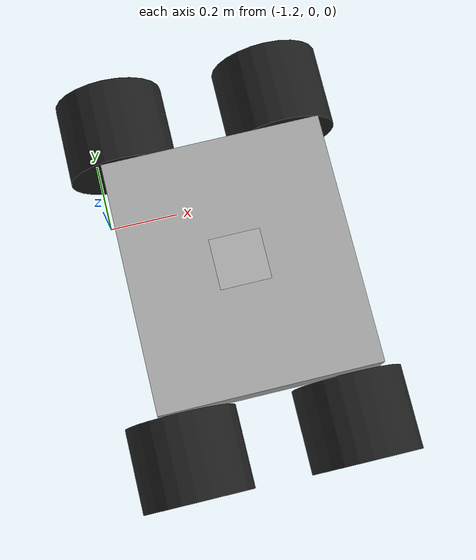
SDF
<?xml version='1.0'?>
<sdf version='1.7'>
  <model name='my_vehicle_2'>
    <link name='platform'>
      <inertial>
        <mass>0.453592</mass>
        <inertia>
          <ixx>0.022113</ixx>
          <ixy>0</ixy>
          <ixz>0</ixz>
          <iyy>0.016999</iyy>
          <iyz>0</iyz>
          <izz>0.0377454</izz>
        </inertia>
        <pose>0 0 0 0 -0 0</pose>
      </inertial>
      <pose>-0.855453 -0.204089 0.029318 0 -0 0</pose>
      <gravity>1</gravity>
      <self_collide>0</self_collide>
      <kinematic>0</kinematic>
      <enable_wind>0</enable_wind>

        <visual name="qrcode1">
          <pose>0 0 0.10 0 0 0</pose>
          <cast_shadows>false</cast_shadows>
          <geometry>
            <plane>
              <normal>0 0 1</normal>
              <size>0.15 0.15</size>
            </plane>
          </geometry>

          <material>
            <script>
              <uri>file://media/materials/scripts/gazebo2.material</uri>
              <name>Gazebo/Aruco72</name>
            </script>
          </material>

        </visual>

      <visual name='visual'>
        <pose>0 0 0 0 -0 0</pose>
        <geometry>
          <box>
            <size>0.656993 0.75295 0.134448</size>
          </box>
        </geometry>
        <material>
          <lighting>1</lighting>
          <script>
            <uri>file://media/materials/scripts/gazebo.material</uri>
            <name>Gazebo/Metal</name>
          </script>
          <shader type='pixel'>
            <normal_map>__default__</normal_map>
          </shader>
          <ambient>0.3 0.3 0.3 1</ambient>
          <diffuse>0.7 0.7 0.7 1</diffuse>
          <specular>0.01 0.01 0.01 1</specular>
          <emissive>0 0 0 1</emissive>
        </material>
        <transparency>0</transparency>
        <cast_shadows>1</cast_shadows>
      </visual>
      <collision name='collision'>
        <laser_retro>0</laser_retro>
        <max_contacts>10</max_contacts>
        <pose>0 0 0 0 -0 0</pose>
        <geometry>
          <box>
            <size>0.656993 0.75295 0.134448</size>
          </box>
        </geometry>
        <surface>
          <friction>
            <ode>
              <mu>1000</mu>
		<mu2>1000</mu2>
              <fdir1>0 0 0</fdir1>
              <slip1>0</slip1>
              <slip2>0</slip2>
            </ode>
            <torsional>
              <coefficient>1</coefficient>
              <patch_radius>0</patch_radius>
              <surface_radius>0</surface_radius>
              <use_patch_radius>1</use_patch_radius>
              <ode>
                <slip>0</slip>
              </ode>
            </torsional>
          </friction>
          <bounce>
            <restitution_coefficient>0</restitution_coefficient>
            <threshold>1e+06</threshold>
          </bounce>
          <contact>
            <collide_without_contact>0</collide_without_contact>
            <collide_without_contact_bitmask>1</collide_without_contact_bitmask>
            <collide_bitmask>1</collide_bitmask>
            <ode>
              <soft_cfm>0</soft_cfm>
              <soft_erp>0.2</soft_erp>
              <kp>1e+13</kp>
              <kd>1</kd>
              <max_vel>0.01</max_vel>
              <min_depth>0</min_depth>
            </ode>
            <bullet>
              <split_impulse>1</split_impulse>
              <split_impulse_penetration_threshold>-0.01</split_impulse_penetration_threshold>
              <soft_cfm>0</soft_cfm>
              <soft_erp>0.2</soft_erp>
              <kp>1e+13</kp>
              <kd>1</kd>
            </bullet>
          </contact>
        </surface>
      </collision>
    </link>
    <link name='wheel_0'>
      <inertial>
        <mass>1.2</mass>
        <inertia>
          <ixx>0.0145863</ixx>
          <ixy>0</ixy>
          <ixz>0</ixz>
          <iyy>0.0145863</iyy>
          <iyz>0</iyz>
          <izz>0.0166725</izz>
        </inertia>
        <pose>0 0 0 0 -0 0</pose>
      </inertial>
      <pose>-1.12754 -0.709402 -0.070627 1.57065 3e-05 -0.000928</pose>
      <gravity>1</gravity>
      <self_collide>0</self_collide>
      <kinematic>0</kinematic>
      <enable_wind>0</enable_wind>
      <visual name='visual'>
        <pose>0 0 0 0 -0 0</pose>
        <geometry>
          <cylinder>
            <radius>0.166696</radius>
            <length>0.25</length>
          </cylinder>
        </geometry>
        <material>
          <lighting>1</lighting>
          <script>
            <uri>file://media/materials/scripts/gazebo.material</uri>
            <name>Gazebo/Black</name>
          </script>
          <shader type='pixel'>
            <normal_map>__default__</normal_map>
          </shader>
          <ambient>0.3 0.3 0.3 1</ambient>
          <diffuse>0.7 0.7 0.7 1</diffuse>
          <specular>0.01 0.01 0.01 1</specular>
          <emissive>0 0 0 1</emissive>
        </material>
        <transparency>0</transparency>
        <cast_shadows>1</cast_shadows>
      </visual>
      <collision name='collision'>
        <laser_retro>0</laser_retro>
        <max_contacts>10</max_contacts>
        <pose>0 0 0 0 -0 0</pose>
        <geometry>
          <cylinder>
            <radius>0.166696</radius>
            <length>0.25</length>
          </cylinder>
        </geometry>
        <surface>
          <friction>
            <ode>
              <mu>1</mu>
              <mu2>1</mu2>
              <fdir1>0 0 0</fdir1>
              <slip1>0</slip1>
              <slip2>0</slip2>
            </ode>
            <torsional>
              <coefficient>1</coefficient>
              <patch_radius>0</patch_radius>
              <surface_radius>0</surface_radius>
              <use_patch_radius>1</use_patch_radius>
              <ode>
                <slip>0</slip>
              </ode>
            </torsional>
          </friction>
          <bounce>
            <restitution_coefficient>0</restitution_coefficient>
            <threshold>1e+06</threshold>
          </bounce>
          <contact>
            <collide_without_contact>0</collide_without_contact>
            <collide_without_contact_bitmask>1</collide_without_contact_bitmask>
            <collide_bitmask>1</collide_bitmask>
            <ode>
              <soft_cfm>0</soft_cfm>
              <soft_erp>0.2</soft_erp>
              <kp>1e+13</kp>
              <kd>1</kd>
              <max_vel>0.01</max_vel>
              <min_depth>0</min_depth>
            </ode>
            <bullet>
              <split_impulse>1</split_impulse>
              <split_impulse_penetration_threshold>-0.01</split_impulse_penetration_threshold>
              <soft_cfm>0</soft_cfm>
              <soft_erp>0.2</soft_erp>
              <kp>1e+13</kp>
              <kd>1</kd>
            </bullet>
          </contact>
        </surface>
      </collision>
    </link>
    <link name='wheel_1'>
      <inertial>
        <mass>1.5</mass>
        <inertia>
          <ixx>0.0182328</ixx>
          <ixy>0</ixy>
          <ixz>0</ixz>
          <iyy>0.0182328</iyy>
          <iyz>0</iyz>
          <izz>0.0208407</izz>
        </inertia>
        <pose>0 0 0 0 -0 0</pose>
      </inertial>
      <pose>-0.624772 -0.713235 -0.070573 1.57061 6e-05 -0.001856</pose>
      <gravity>1</gravity>
      <self_collide>0</self_collide>
      <kinematic>0</kinematic>
      <enable_wind>0</enable_wind>
      <visual name='visual'>
        <pose>0 0 0 0 -0 0</pose>
        <geometry>
          <cylinder>
            <radius>0.166696</radius>
            <length>0.25</length>
          </cylinder>
        </geometry>
        <material>
          <lighting>1</lighting>
          <script>
            <uri>file://media/materials/scripts/gazebo.material</uri>
            <name>Gazebo/Black</name>
          </script>
          <shader type='pixel'>
            <normal_map>__default__</normal_map>
          </shader>
          <ambient>0.3 0.3 0.3 1</ambient>
          <diffuse>0.7 0.7 0.7 1</diffuse>
          <specular>0.01 0.01 0.01 1</specular>
          <emissive>0 0 0 1</emissive>
        </material>
        <transparency>0</transparency>
        <cast_shadows>1</cast_shadows>
      </visual>
      <collision name='collision'>
        <laser_retro>0</laser_retro>
        <max_contacts>10</max_contacts>
        <pose>0 0 0 0 -0 0</pose>
        <geometry>
          <cylinder>
            <radius>0.166696</radius>
            <length>0.25</length>
          </cylinder>
        </geometry>
        <surface>
          <friction>
            <ode>
              <mu>1</mu>
              <mu2>1</mu2>
              <fdir1>0 0 0</fdir1>
              <slip1>0</slip1>
              <slip2>0</slip2>
            </ode>
            <torsional>
              <coefficient>1</coefficient>
              <patch_radius>0</patch_radius>
              <surface_radius>0</surface_radius>
              <use_patch_radius>1</use_patch_radius>
              <ode>
                <slip>0</slip>
              </ode>
            </torsional>
          </friction>
          <bounce>
            <restitution_coefficient>0</restitution_coefficient>
            <threshold>1e+06</threshold>
          </bounce>
          <contact>
            <collide_without_contact>0</collide_without_contact>
            <collide_without_contact_bitmask>1</collide_without_contact_bitmask>
            <collide_bitmask>1</collide_bitmask>
            <ode>
              <soft_cfm>0</soft_cfm>
              <soft_erp>0.2</soft_erp>
              <kp>1e+13</kp>
              <kd>1</kd>
              <max_vel>0.01</max_vel>
              <min_depth>0</min_depth>
            </ode>
            <bullet>
              <split_impulse>1</split_impulse>
              <split_impulse_penetration_threshold>-0.01</split_impulse_penetration_threshold>
              <soft_cfm>0</soft_cfm>
              <soft_erp>0.2</soft_erp>
              <kp>1e+13</kp>
              <kd>1</kd>
            </bullet>
          </contact>
        </surface>
      </collision>
    </link>
    <link name='wheel_2'>
      <inertial>
        <mass>1.5</mass>
        <inertia>
          <ixx>0.0182328</ixx>
          <ixy>0</ixy>
          <ixz>0</ixz>
          <iyy>0.0182328</iyy>
          <iyz>0</iyz>
          <izz>0.0208407</izz>
        </inertia>
        <pose>0 0 0 0 -0 0</pose>
      </inertial>
      <pose>-0.626217 0.308876 -0.070525 1.57056 9e-05 -0.002784</pose>
      <gravity>1</gravity>
      <self_collide>0</self_collide>
      <kinematic>0</kinematic>
      <enable_wind>0</enable_wind>
      <visual name='visual'>
        <pose>0 0 0 0 -0 0</pose>
        <geometry>
          <cylinder>
            <radius>0.166696</radius>
            <length>0.25</length>
          </cylinder>
        </geometry>
        <material>
          <lighting>1</lighting>
          <script>
            <uri>file://media/materials/scripts/gazebo.material</uri>
            <name>Gazebo/Black</name>
          </script>
          <shader type='pixel'>
            <normal_map>__default__</normal_map>
          </shader>
          <ambient>0.3 0.3 0.3 1</ambient>
          <diffuse>0.7 0.7 0.7 1</diffuse>
          <specular>0.01 0.01 0.01 1</specular>
          <emissive>0 0 0 1</emissive>
        </material>
        <transparency>0</transparency>
        <cast_shadows>1</cast_shadows>
      </visual>
      <collision name='collision'>
        <laser_retro>0</laser_retro>
        <max_contacts>10</max_contacts>
        <pose>0 0 0 0 -0 0</pose>
        <geometry>
          <cylinder>
            <radius>0.166696</radius>
            <length>0.25</length>
          </cylinder>
        </geometry>
        <surface>
          <friction>
            <ode>
              <mu>1</mu>
              <mu2>1</mu2>
              <fdir1>0 0 0</fdir1>
              <slip1>0</slip1>
              <slip2>0</slip2>
            </ode>
            <torsional>
              <coefficient>1</coefficient>
              <patch_radius>0</patch_radius>
              <surface_radius>0</surface_radius>
              <use_patch_radius>1</use_patch_radius>
              <ode>
                <slip>0</slip>
              </ode>
            </torsional>
          </friction>
          <bounce>
            <restitution_coefficient>0</restitution_coefficient>
            <threshold>1e+06</threshold>
          </bounce>
          <contact>
            <collide_without_contact>0</collide_without_contact>
            <collide_without_contact_bitmask>1</collide_without_contact_bitmask>
            <collide_bitmask>1</collide_bitmask>
            <ode>
              <soft_cfm>0</soft_cfm>
              <soft_erp>0.2</soft_erp>
              <kp>1e+13</kp>
              <kd>1</kd>
              <max_vel>0.01</max_vel>
              <min_depth>0</min_depth>
            </ode>
            <bullet>
              <split_impulse>1</split_impulse>
              <split_impulse_penetration_threshold>-0.01</split_impulse_penetration_threshold>
              <soft_cfm>0</soft_cfm>
              <soft_erp>0.2</soft_erp>
              <kp>1e+13</kp>
              <kd>1</kd>
            </bullet>
          </contact>
        </surface>
      </collision>
    </link>
    <link name='wheel_3'>
      <inertial>
        <mass>1.2</mass>
        <inertia>
          <ixx>0.0145863</ixx>
          <ixy>0</ixy>
          <ixz>0</ixz>
          <iyy>0.0145863</iyy>
          <iyz>0</iyz>
          <izz>0.0166725</izz>
        </inertia>
        <pose>0 0 0 0 -0 0</pose>
      </inertial>
      <pose>-1.12655 0.305475 -0.070509 1.57052 0.00012 -0.003712</pose>
      <gravity>1</gravity>
      <self_collide>0</self_collide>
      <kinematic>0</kinematic>
      <enable_wind>0</enable_wind>
      <visual name='visual'>
        <pose>0 0 0 0 -0 0</pose>
        <geometry>
          <cylinder>
            <radius>0.166696</radius>
            <length>0.25</length>
          </cylinder>
        </geometry>
        <material>
          <lighting>1</lighting>
          <script>
            <uri>file://media/materials/scripts/gazebo.material</uri>
            <name>Gazebo/Black</name>
          </script>
          <shader type='pixel'>
            <normal_map>__default__</normal_map>
          </shader>
          <ambient>0.3 0.3 0.3 1</ambient>
          <diffuse>0.7 0.7 0.7 1</diffuse>
          <specular>0.01 0.01 0.01 1</specular>
          <emissive>0 0 0 1</emissive>
        </material>
        <transparency>0</transparency>
        <cast_shadows>1</cast_shadows>
      </visual>
      <collision name='collision'>
        <laser_retro>0</laser_retro>
        <max_contacts>10</max_contacts>
        <pose>0 0 0 0 -0 0</pose>
        <geometry>
          <cylinder>
            <radius>0.166696</radius>
            <length>0.25</length>
          </cylinder>
        </geometry>
        <surface>
          <friction>
            <ode>
              <mu>1</mu>
              <mu2>1</mu2>
              <fdir1>0 0 0</fdir1>
              <slip1>0</slip1>
              <slip2>0</slip2>
            </ode>
            <torsional>
              <coefficient>1</coefficient>
              <patch_radius>0</patch_radius>
              <surface_radius>0</surface_radius>
              <use_patch_radius>1</use_patch_radius>
              <ode>
                <slip>0</slip>
              </ode>
            </torsional>
          </friction>
          <bounce>
            <restitution_coefficient>0</restitution_coefficient>
            <threshold>1e+06</threshold>
          </bounce>
          <contact>
            <collide_without_contact>0</collide_without_contact>
            <collide_without_contact_bitmask>1</collide_without_contact_bitmask>
            <collide_bitmask>1</collide_bitmask>
            <ode>
              <soft_cfm>0</soft_cfm>
              <soft_erp>0.2</soft_erp>
              <kp>1e+13</kp>
              <kd>1</kd>
              <max_vel>0.01</max_vel>
              <min_depth>0</min_depth>
            </ode>
            <bullet>
              <split_impulse>1</split_impulse>
              <split_impulse_penetration_threshold>-0.01</split_impulse_penetration_threshold>
              <soft_cfm>0</soft_cfm>
              <soft_erp>0.2</soft_erp>
              <kp>1e+13</kp>
              <kd>1</kd>
            </bullet>
          </contact>
        </surface>
      </collision>
    </link>
    <joint name='link_0_JOINT_0' type='revolute'>
      <parent>platform</parent>
      <child>wheel_0</child>
      <pose>0 0 0 0 -0 0</pose>
      <axis>
        <xyz>0 0 1</xyz>
        <limit>
          <lower>-1.79769e+308</lower>
          <upper>1.79769e+308</upper>
          <effort>-1</effort>
          <velocity>-1</velocity>
        </limit>
        <dynamics>
          <spring_reference>0</spring_reference>
          <spring_stiffness>0</spring_stiffness>
          <damping>0</damping>
          <friction>0</friction>
        </dynamics>
      </axis>
      <physics>
        <ode>
          <limit>
            <cfm>0</cfm>
            <erp>0.2</erp>
          </limit>
          <suspension>
            <cfm>0</cfm>
            <erp>0.2</erp>
          </suspension>
        </ode>
      </physics>
    </joint>
    <joint name='link_0_JOINT_1' type='revolute'>
      <parent>platform</parent>
      <child>wheel_1</child>
      <pose>0 0 0 0 -0 0</pose>
      <axis>
        <xyz>0 0 1</xyz>
        <limit>
          <lower>-1.79769e+308</lower>
          <upper>1.79769e+308</upper>
          <effort>-1</effort>
          <velocity>-1</velocity>
        </limit>
        <dynamics>
          <spring_reference>0</spring_reference>
          <spring_stiffness>0</spring_stiffness>
          <damping>0</damping>
          <friction>0</friction>
        </dynamics>
      </axis>
      <physics>
        <ode>
          <limit>
            <cfm>0</cfm>
            <erp>0.2</erp>
          </limit>
          <suspension>
            <cfm>0</cfm>
            <erp>0.2</erp>
          </suspension>
        </ode>
      </physics>
    </joint>
    <joint name='link_0_JOINT_2' type='revolute'>
      <parent>platform</parent>
      <child>wheel_2</child>
      <pose>0 0 0 0 -0 0</pose>
      <axis>
        <xyz>0 0 1</xyz>
        <limit>
          <lower>-1.79769e+308</lower>
          <upper>1.79769e+308</upper>
          <effort>-1</effort>
          <velocity>-1</velocity>
        </limit>
        <dynamics>
          <spring_reference>0</spring_reference>
          <spring_stiffness>0</spring_stiffness>
          <damping>0</damping>
          <friction>0</friction>
        </dynamics>
      </axis>
      <physics>
        <ode>
          <limit>
            <cfm>0</cfm>
            <erp>0.2</erp>
          </limit>
          <suspension>
            <cfm>0</cfm>
            <erp>0.2</erp>
          </suspension>
        </ode>
      </physics>
    </joint>
    <joint name='link_0_JOINT_3' type='revolute'>
      <parent>platform</parent>
      <child>wheel_3</child>
      <pose>0 0 0 0 -0 0</pose>
      <axis>
        <xyz>0 0 1</xyz>
        <limit>
          <lower>-1.79769e+308</lower>
          <upper>1.79769e+308</upper>
          <effort>-1</effort>
          <velocity>-1</velocity>
        </limit>
        <dynamics>
          <spring_reference>0</spring_reference>
          <spring_stiffness>0</spring_stiffness>
          <damping>0</damping>
          <friction>0</friction>
        </dynamics>
      </axis>
      <physics>
        <ode>
          <limit>
            <cfm>0</cfm>
            <erp>0.2</erp>
          </limit>
          <suspension>
            <cfm>0</cfm>
            <erp>0.2</erp>
          </suspension>
        </ode>
      </physics>
    </joint>
    <static>0</static>
    <allow_auto_disable>1</allow_auto_disable>
     <plugin name="skid_steer_drive_controller" filename="libgazebo_ros_diff_drive.so">
	    <updateRate>30.0</updateRate>
	    <commandTopic>cmd_vel</commandTopic>
	    <ros>
	    	<namespace>/cart</namespace>
	    </ros>

	    <!-- wheels -->
	    <left_joint>link_0_JOINT_0</left_joint>
	    <right_joint>link_0_JOINT_3</right_joint>

	    <wheel_separation>0.752950</wheel_separation>
	    <wheel_diameter>0.333392</wheel_diameter>

	    <robotBaseFrame>platform</robotBaseFrame>
	    <broadcastTF>true</broadcastTF>
	    <max_wheel_torque>500</max_wheel_torque>

	     <!-- output -->
	     <publish_odom>true</publish_odom>

	      <odometry_topic>podom_2</odometry_topic>
	      <robot_base_frame>base_footprint</robot_base_frame>

    </plugin>
  </model>
</sdf>
